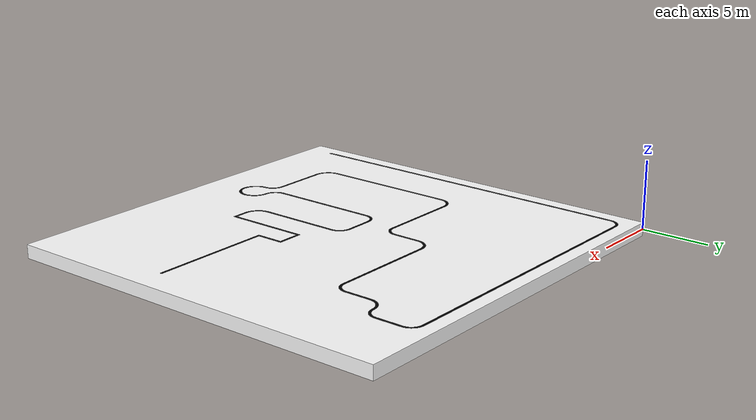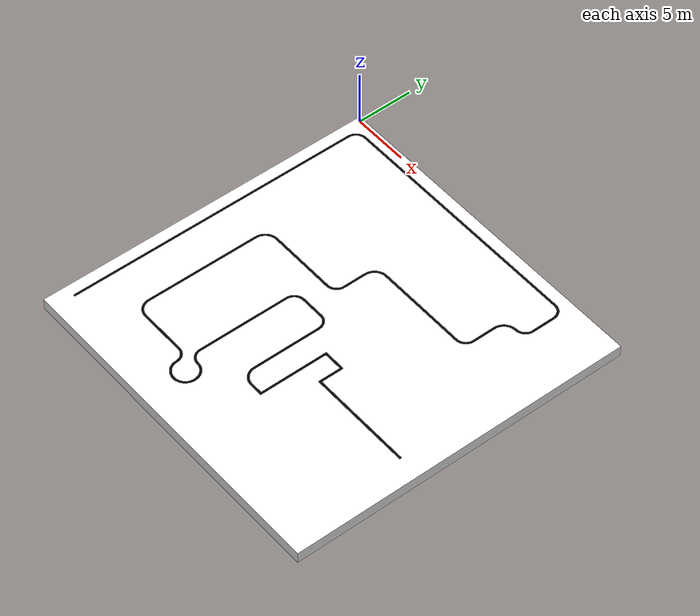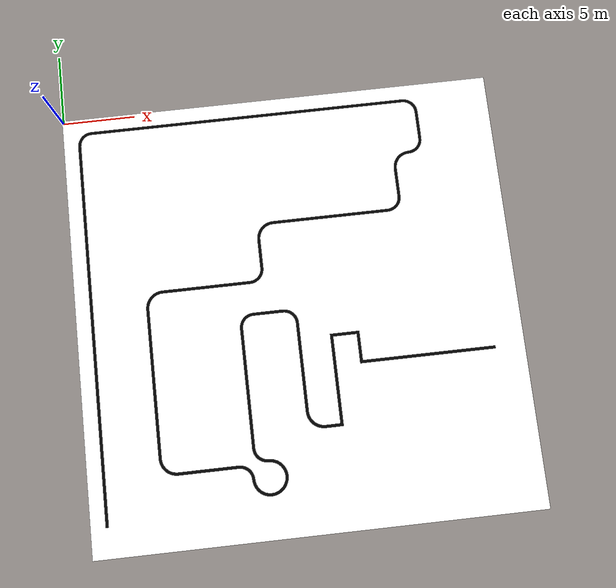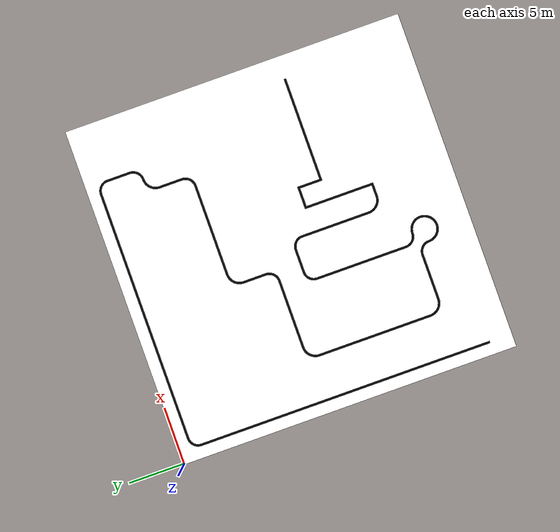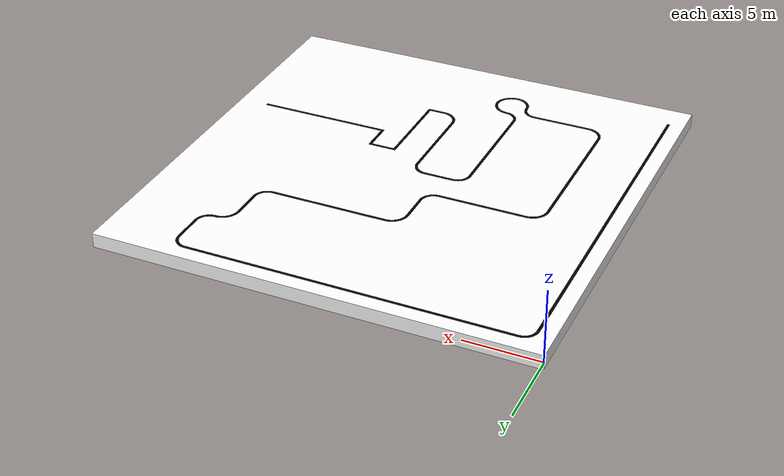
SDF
<?xml version="1.0" encoding="UTF-8"?>
<sdf version="1.9">
  <world name="default">
    <physics type="ode">
      <max_step_size>0.004</max_step_size>
      <real_time_factor>1.0</real_time_factor>
      <real_time_update_rate>250</real_time_update_rate>
    </physics>
    <gravity>0 0 -9.8</gravity>
    <magnetic_field>6e-06 2.3e-05 -4.2e-05</magnetic_field>
    <atmosphere type="adiabatic"/>
    <scene>
      <grid>false</grid>
      <ambient>0.4 0.4 0.4 1</ambient>
      <background>0.7 0.7 0.7 1</background>
      <shadows>true</shadows>
    </scene>
    <light name="sunUTC" type="directional">
      <pose>0 0 500 0 -0 0</pose>
      <cast_shadows>true</cast_shadows>
      <intensity>1</intensity>
      <direction>0.001 0.625 -0.78</direction>
      <diffuse>0.904 0.904 0.904 1</diffuse>
      <specular>0.271 0.271 0.271 1</specular>
      <attenuation>
        <range>2000</range>
        <linear>0</linear>
        <constant>1</constant>
        <quadratic>0</quadratic>
      </attenuation>
      <spot>
        <inner_angle>0</inner_angle>
        <outer_angle>0</outer_angle>
        <falloff>0</falloff>
      </spot>
    </light>
    <spherical_coordinates>
      <surface_model>EARTH_WGS84</surface_model>
      <world_frame_orientation>ENU</world_frame_orientation>
      <latitude_deg>47.397971057728974</latitude_deg>
      <longitude_deg> 8.546163739800146</longitude_deg>
      <elevation>0</elevation>
    </spherical_coordinates>
    <include>
      <uri>model://track</uri>
      <name>track</name>
      <pose>0 0 0 0 0 0</pose>
      <static>true</static>
    </include>
    <model name="box">
      <static>true</static>
      <pose>15 -15 -0.001 0 0 0</pose>
      <link name="box_link">
        <inertial>
          <mass>1.0</mass>
          <inertia>
            <ixx>0.166667</ixx>
            <ixy>0</ixy>
            <ixz>0</ixz>
            <iyy>0.166667</iyy>
            <iyz>0</iyz>
            <izz>0.166667</izz>
          </inertia>
        </inertial>
        <collision name="collision">
          <geometry>
            <box>
              <size>30 30 1</size>
            </box>
          </geometry>
        </collision>
        <visual name="visual">
          <geometry>
            <box>
              <size>30 30 1</size>
            </box>
          </geometry>
          <material>
            <ambient>1 1 1 1</ambient>
            <diffuse>1 1 1 1</diffuse>
            <specular>0 0 0 0</specular>
          </material>
        </visual>
      </link>
    </model>
  </world>
</sdf>

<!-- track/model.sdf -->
<sdf version="1.5">
  <model name="c-track">
    <static>true</static>
    <link name="c-track">
      <visual name="visual">
        <cast_shadows>false</cast_shadows>
        <pose>0 0 0 0 0 0</pose>
        <geometry>
          <mesh>
            <uri>model://track/meshes/track.stl </uri>
            <scale>0.01 0.01 0.01</scale>
          </mesh>
        </geometry>
        <material>
          <ambient>0 0 0 1</ambient>
          <diffuse>0 0 0 1</diffuse>
          <specular>0.1 0.1 0.1 1</specular>
          <emissive>0 0 0 0</emissive>
        </material>
      </visual>
    </link>
  </model>
</sdf>
